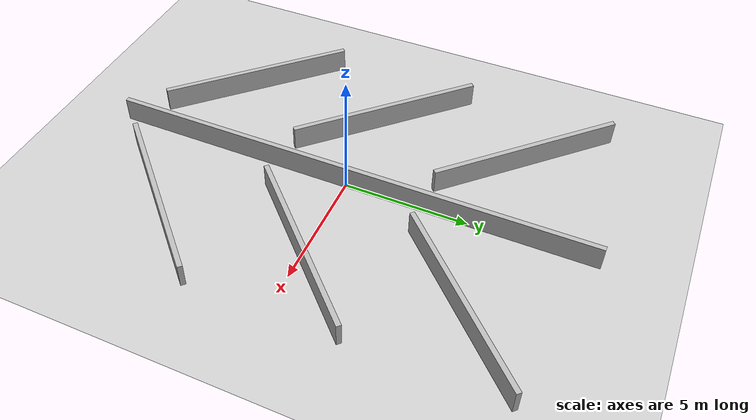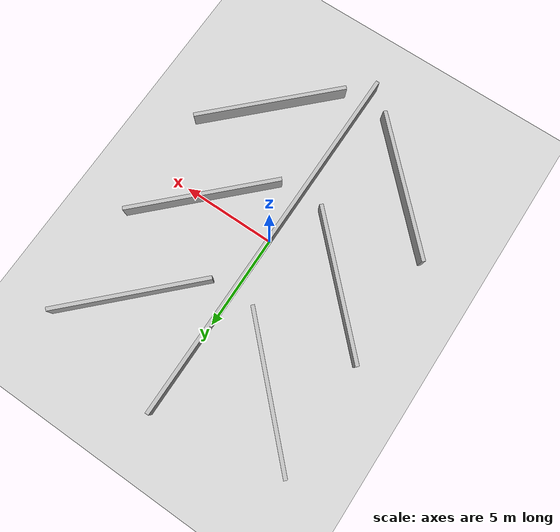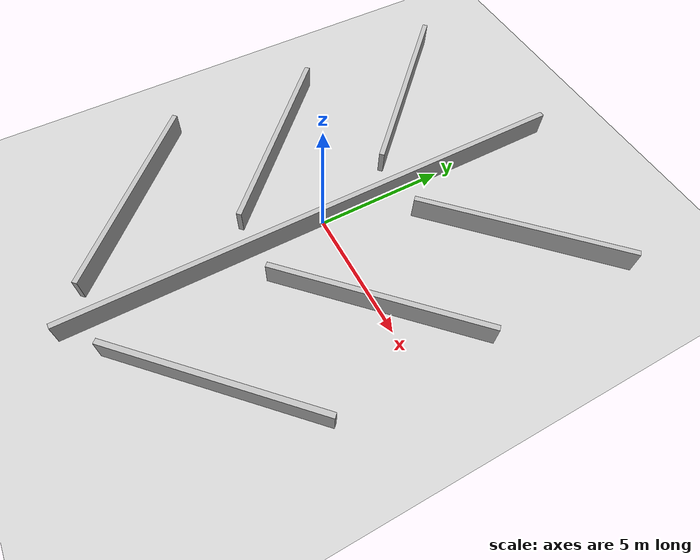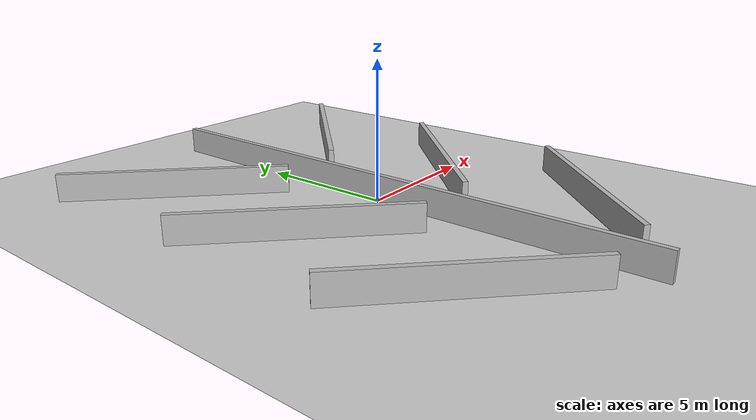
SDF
<?xml version="1.0" ?>
<sdf version='1.7'>
  <world name='fishbone_layout_world'>
    <plugin
      name="gz::sim::systems::Physics"
      filename="gz-sim-physics-system">
    </plugin>
    <plugin
      name="gz::sim::systems::UserCommands"
      filename="gz-sim-user-commands-system">
    </plugin>
    <plugin
      name="gz::sim::systems::SceneBroadcaster"
      filename="gz-sim-scene-broadcaster-system">
    </plugin>
    <light name='sun' type='directional'>
      <cast_shadows>true</cast_shadows>
      <pose>0 0 10 0 0 0</pose>
      <diffuse>0.8 0.8 0.8 1</diffuse>
      <specular>0.2 0.2 0.2 1</specular>
      <direction>-0.5 0.1 -0.9</direction>
    </light>
    <model name='ground_plane'>
      <static>true</static>
      <link name='link'>
        <collision name='collision'>
          <geometry><plane><normal>0 0 1</normal><size>100 100</size></plane></geometry>
        </collision>
        <visual name='visual'>
          <geometry><plane><normal>0 0 1</normal><size>100 100</size></plane></geometry>
          <material><ambient>0.8 0.8 0.8 1</ambient><diffuse>0.8 0.8 0.8 1</diffuse><specular>0.8 0.8 0.8 1</specular></material>
        </visual>
      </link>
    </model>

    <model name='fishbone_walls'>
      <pose>0 0 0 0 0 0</pose>
      <static>true</static>

      <link name='spine'>
        <pose>0 0 0.5 0 0 1.5707</pose>
        <visual name='visual'>
          <geometry><box><size>20 0.2 1</size></box></geometry>
        </visual>
        <collision name='collision'>
          <geometry><box><size>20 0.2 1</size></box></geometry>
        </collision>
      </link>

      <link name='bone_l1'>
        <pose>-4 6 0.5 0 0 -0.7854</pose>
        <visual name='visual'><geometry><box><size>8 0.2 1</size></box></geometry></visual>
        <collision name='collision'><geometry><box><size>8 0.2 1</size></box></geometry></collision>
      </link>
      <link name='bone_l2'>
        <pose>-4 0 0.5 0 0 -0.7854</pose>
        <visual name='visual'><geometry><box><size>8 0.2 1</size></box></geometry></visual>
        <collision name='collision'><geometry><box><size>8 0.2 1</size></box></geometry></collision>
      </link>
      <link name='bone_l3'>
        <pose>-4 -6 0.5 0 0 -0.7854</pose>
        <visual name='visual'><geometry><box><size>8 0.2 1</size></box></geometry></visual>
        <collision name='collision'><geometry><box><size>8 0.2 1</size></box></geometry></collision>
      </link>

      <link name='bone_r1'>
        <pose>4 6 0.5 0 0 0.7854</pose>
        <visual name='visual'><geometry><box><size>8 0.2 1</size></box></geometry></visual>
        <collision name='collision'><geometry><box><size>8 0.2 1</size></box></geometry></collision>
      </link>
      <link name='bone_r2'>
        <pose>4 0 0.5 0 0 0.7854</pose>
        <visual name='visual'><geometry><box><size>8 0.2 1</size></box></geometry></visual>
        <collision name='collision'><geometry><box><size>8 0.2 1</size></box></geometry></collision>
      </link>
      <link name='bone_r3'>
        <pose>4 -6 0.5 0 0 0.7854</pose>
        <visual name='visual'><geometry><box><size>8 0.2 1</size></box></geometry></visual>
        <collision name='collision'><geometry><box><size>8 0.2 1</size></box></geometry></collision>
      </link>
    </model>
  </world>
</sdf>
